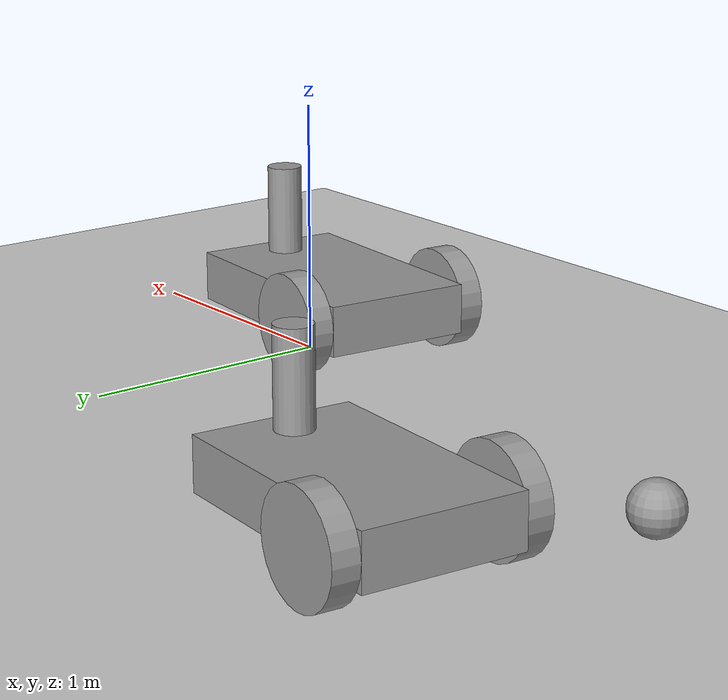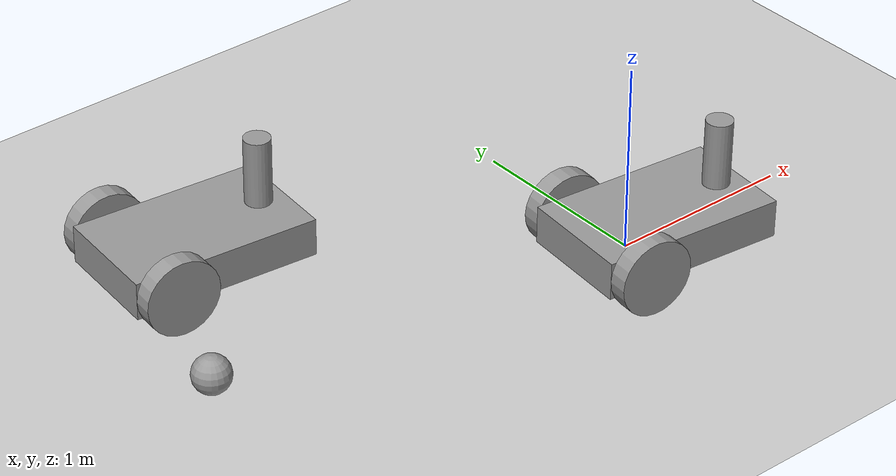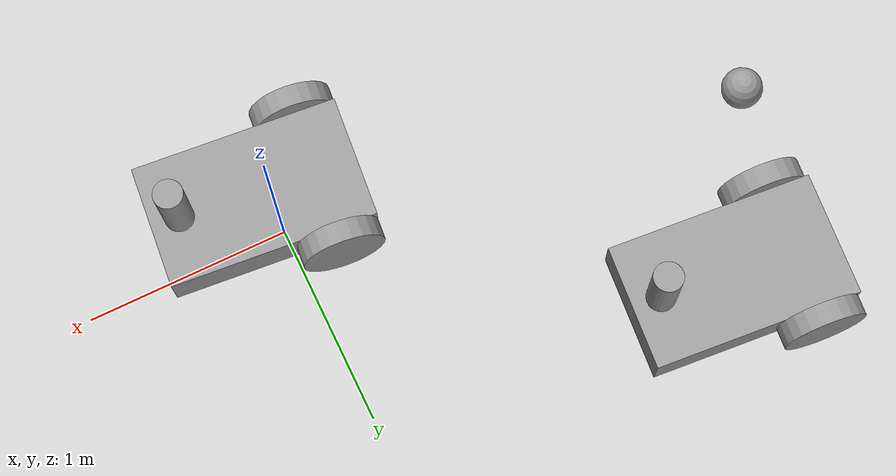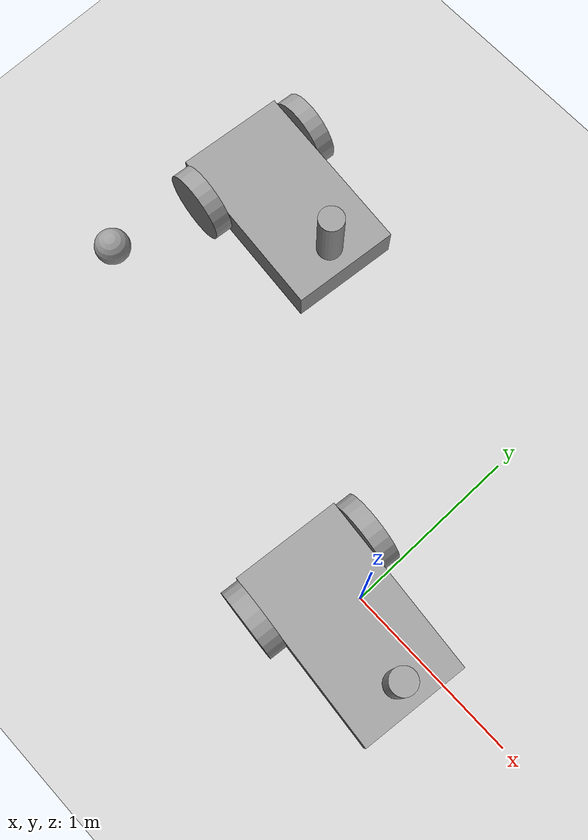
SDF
<sdf version="1.7">
 <world name="default">
  <model name="ground_plane">
   <static>1</static>
   <link name="link">
    <collision name="collision">
     <geometry><plane><normal>0 0 1</normal><size>100 100</size></plane></geometry>
     <surface>
      <contact><collide_bitmask>65535</collide_bitmask></contact>
      <friction><ode><mu>100</mu><mu2>50</mu2></ode></friction>
     </surface>
    </collision>
    <visual name="visual">
     <cast_shadows>0</cast_shadows>
     <geometry><plane><normal>0 0 1</normal><size>100 100</size></plane></geometry>
     <material>
      <script><uri>file://media/materials/scripts/gazebo.material</uri><name>Gazebo/Grey</name></script>
     </material>
    </visual>
   </link>
  </model>
  <model name="jason_bot_0">
   <link name="link_1">
    <inertial>
     <mass>0.111959</mass>
     <inertia>
      <ixx>0.00973396</ixx>
      <ixy>0</ixy>
      <ixz>0</ixz>
      <iyy>0.00310474</iyy>
      <iyz>0</iyz>
      <izz>0.0120306</izz>
     </inertia>
    </inertial>
    <pose>-0.224 -0.262981 0.465613 0 -0 0</pose>
    <visual name="visual">
     <geometry><box><size>1 0.6 0.2</size></box></geometry>
     <material>
      <lighting>1</lighting>
      <script><uri>file://media/materials/scripts/gazebo.material</uri><name>Gazebo/Grey</name></script>
      <shader type="pixel"><normal_map>__default__</normal_map></shader>
      <ambient>0.3 0.3 0.3 1</ambient>
      <diffuse>0.7 0.7 0.7 1</diffuse>
      <specular>0.01 0.01 0.01 1</specular>
      <emissive>0 0 0 1</emissive>
     </material>
    </visual>
    <collision name="collision">
     <geometry><box><size>1 0.6 0.2</size></box></geometry>
     <surface>
      <friction>
       <ode><mu>1</mu><mu2>1</mu2><fdir1>0 0 0</fdir1><slip1>0</slip1><slip2>0</slip2></ode>
       <torsional>
        <coefficient>1</coefficient>
        <patch_radius>0</patch_radius>
        <surface_radius>0</surface_radius>
        <use_patch_radius>1</use_patch_radius>
        <ode><slip>0</slip></ode>
       </torsional>
      </friction>
      <bounce><restitution_coefficient>0</restitution_coefficient><threshold>1e+06</threshold></bounce>
      <contact>
       <collide_without_contact>0</collide_without_contact>
       <collide_without_contact_bitmask>1</collide_without_contact_bitmask>
       <collide_bitmask>1</collide_bitmask>
       <ode>
        <soft_cfm>0</soft_cfm>
        <soft_erp>0.2</soft_erp>
        <kp>1e+13</kp>
        <kd>1</kd>
        <max_vel>0.01</max_vel>
        <min_depth>0</min_depth>
       </ode>
       <bullet>
        <split_impulse>1</split_impulse>
        <split_impulse_penetration_threshold>-0.01</split_impulse_penetration_threshold>
        <soft_cfm>0</soft_cfm>
        <soft_erp>0.2</soft_erp>
        <kp>1e+13</kp>
        <kd>1</kd>
       </bullet>
      </contact>
     </surface>
    </collision>
   </link>
   <link name="link_2">
    <inertial>
     <mass>1</mass>
     <inertia><ixx>0.145833</ixx><ixy>0</ixy><ixz>0</ixz><iyy>0.145833</iyy><iyz>0</iyz><izz>0.125</izz></inertia>
    </inertial>
    <pose>-0.524 -0.613 0.465613 1.5707 -0 0</pose>
    <visual name="visual">
     <geometry><cylinder><radius>0.2</radius><length>0.1</length></cylinder></geometry>
     <material>
      <lighting>1</lighting>
      <script><uri>file://media/materials/scripts/gazebo.material</uri><name>Gazebo/Grey</name></script>
      <shader type="pixel"><normal_map>__default__</normal_map></shader>
      <ambient>0.3 0.3 0.3 1</ambient>
      <diffuse>0.7 0.7 0.7 1</diffuse>
      <specular>0.01 0.01 0.01 1</specular>
      <emissive>0 0 0 1</emissive>
     </material>
    </visual>
    <collision name="collision">
     <geometry><cylinder><radius>0.2</radius><length>0.1</length></cylinder></geometry>
     <surface>
      <friction>
       <ode><mu>1</mu><mu2>1</mu2><fdir1>0 0 0</fdir1><slip1>0</slip1><slip2>0</slip2></ode>
       <torsional>
        <coefficient>1</coefficient>
        <patch_radius>0</patch_radius>
        <surface_radius>0</surface_radius>
        <use_patch_radius>1</use_patch_radius>
        <ode><slip>0</slip></ode>
       </torsional>
      </friction>
      <bounce><restitution_coefficient>0</restitution_coefficient><threshold>1e+06</threshold></bounce>
      <contact>
       <collide_without_contact>0</collide_without_contact>
       <collide_without_contact_bitmask>1</collide_without_contact_bitmask>
       <collide_bitmask>1</collide_bitmask>
       <ode>
        <soft_cfm>0</soft_cfm>
        <soft_erp>0.2</soft_erp>
        <kp>1e+13</kp>
        <kd>1</kd>
        <max_vel>0.01</max_vel>
        <min_depth>0</min_depth>
       </ode>
       <bullet>
        <split_impulse>1</split_impulse>
        <split_impulse_penetration_threshold>-0.01</split_impulse_penetration_threshold>
        <soft_cfm>0</soft_cfm>
        <soft_erp>0.2</soft_erp>
        <kp>1e+13</kp>
        <kd>1</kd>
       </bullet>
      </contact>
     </surface>
    </collision>
   </link>
   <link name="link_2_clone">
    <inertial>
     <mass>1</mass>
     <inertia><ixx>0.145833</ixx><ixy>0</ixy><ixz>0</ixz><iyy>0.145833</iyy><iyz>0</iyz><izz>0.125</izz></inertia>
    </inertial>
    <pose>-0.524 0.087038 0.465613 1.5707 -0 0</pose>
    <visual name="visual">
     <geometry><cylinder><radius>0.2</radius><length>0.1</length></cylinder></geometry>
     <material>
      <lighting>1</lighting>
      <script><uri>file://media/materials/scripts/gazebo.material</uri><name>Gazebo/Grey</name></script>
      <shader type="pixel"><normal_map>__default__</normal_map></shader>
      <ambient>0.3 0.3 0.3 1</ambient>
      <diffuse>0.7 0.7 0.7 1</diffuse>
      <specular>0.01 0.01 0.01 1</specular>
      <emissive>0 0 0 1</emissive>
     </material>
    </visual>
    <collision name="collision">
     <geometry><cylinder><radius>0.2</radius><length>0.1</length></cylinder></geometry>
     <surface>
      <friction>
       <ode><mu>1</mu><mu2>1</mu2><fdir1>0 0 0</fdir1><slip1>0</slip1><slip2>0</slip2></ode>
       <torsional>
        <coefficient>1</coefficient>
        <patch_radius>0</patch_radius>
        <surface_radius>0</surface_radius>
        <use_patch_radius>1</use_patch_radius>
        <ode><slip>0</slip></ode>
       </torsional>
      </friction>
      <bounce><restitution_coefficient>0</restitution_coefficient><threshold>1e+06</threshold></bounce>
      <contact>
       <collide_without_contact>0</collide_without_contact>
       <collide_without_contact_bitmask>1</collide_without_contact_bitmask>
       <collide_bitmask>1</collide_bitmask>
       <ode>
        <soft_cfm>0</soft_cfm>
        <soft_erp>0.2</soft_erp>
        <kp>1e+13</kp>
        <kd>1</kd>
        <max_vel>0.01</max_vel>
        <min_depth>0</min_depth>
       </ode>
       <bullet>
        <split_impulse>1</split_impulse>
        <split_impulse_penetration_threshold>-0.01</split_impulse_penetration_threshold>
        <soft_cfm>0</soft_cfm>
        <soft_erp>0.2</soft_erp>
        <kp>1e+13</kp>
        <kd>1</kd>
       </bullet>
      </contact>
     </surface>
    </collision>
   </link>
   <link name="link_3">
    <inertial>
     <mass>0.0096568</mass>
     <inertia>
      <ixx>4.37931e-05</ixx>
      <ixy>0</ixy>
      <ixz>0</ixz>
      <iyy>4.37931e-05</iyy>
      <iyz>0</iyz>
      <izz>4.37931e-05</izz>
     </inertia>
    </inertial>
    <pose>0.136 -0.279742 0.378612 0 -0 0</pose>
    <visual name="visual">
     <geometry><sphere><radius>0.106477</radius></sphere></geometry>
     <material>
      <lighting>1</lighting>
      <script><uri>file://media/materials/scripts/gazebo.material</uri><name>Gazebo/Grey</name></script>
      <shader type="pixel"/>
      <emissive>0 0 0 1</emissive>
     </material>
    </visual>
    <collision name="collision">
     <geometry><sphere><radius>0.106477</radius></sphere></geometry>
     <surface>
      <friction>
       <ode><mu>1</mu><mu2>1</mu2><fdir1>0 0 0</fdir1><slip1>0</slip1><slip2>0</slip2></ode>
       <torsional>
        <coefficient>1</coefficient>
        <patch_radius>0</patch_radius>
        <surface_radius>0</surface_radius>
        <use_patch_radius>1</use_patch_radius>
        <ode><slip>0</slip></ode>
       </torsional>
      </friction>
      <bounce><restitution_coefficient>0</restitution_coefficient><threshold>1e+06</threshold></bounce>
      <contact>
       <collide_without_contact>0</collide_without_contact>
       <collide_without_contact_bitmask>1</collide_without_contact_bitmask>
       <collide_bitmask>1</collide_bitmask>
       <ode>
        <soft_cfm>0</soft_cfm>
        <soft_erp>0.2</soft_erp>
        <kp>1e+13</kp>
        <kd>1</kd>
        <max_vel>0.01</max_vel>
        <min_depth>0</min_depth>
       </ode>
       <bullet>
        <split_impulse>1</split_impulse>
        <split_impulse_penetration_threshold>-0.01</split_impulse_penetration_threshold>
        <soft_cfm>0</soft_cfm>
        <soft_erp>0.2</soft_erp>
        <kp>1e+13</kp>
        <kd>1</kd>
       </bullet>
      </contact>
     </surface>
    </collision>
   </link>
   <link name="link_4">
    <inertial>
     <mass>0.00988067</mass>
     <inertia>
      <ixx>0.00018749</ixx>
      <ixy>0</ixy>
      <ixz>0</ixz>
      <iyy>0.00018749</iyy>
      <iyz>0</iyz>
      <izz>2.653e-05</izz>
     </inertia>
    </inertial>
    <pose>0.136 -0.264648 0.72455 0 -0 0</pose>
    <visual name="visual">
     <geometry><cylinder><radius>0.07</radius><length>0.4</length></cylinder></geometry>
     <material>
      <lighting>1</lighting>
      <script><uri>file://media/materials/scripts/gazebo.material</uri><name>Gazebo/Grey</name></script>
      <shader type="pixel"><normal_map>__default__</normal_map></shader>
      <emissive>0 0 0 1</emissive>
      <ambient>0.3 0.3 0.3 1</ambient>
      <diffuse>0.7 0.7 0.7 1</diffuse>
      <specular>0.01 0.01 0.01 1</specular>
     </material>
    </visual>
    <collision name="collision">
     <geometry><cylinder><radius>0.07</radius><length>0.4</length></cylinder></geometry>
     <surface>
      <friction>
       <ode><mu>1</mu><mu2>1</mu2><fdir1>0 0 0</fdir1><slip1>0</slip1><slip2>0</slip2></ode>
       <torsional>
        <coefficient>1</coefficient>
        <patch_radius>0</patch_radius>
        <surface_radius>0</surface_radius>
        <use_patch_radius>1</use_patch_radius>
        <ode><slip>0</slip></ode>
       </torsional>
      </friction>
      <bounce><restitution_coefficient>0</restitution_coefficient><threshold>1e+06</threshold></bounce>
      <contact>
       <collide_without_contact>0</collide_without_contact>
       <collide_without_contact_bitmask>1</collide_without_contact_bitmask>
       <collide_bitmask>1</collide_bitmask>
       <ode>
        <soft_cfm>0</soft_cfm>
        <soft_erp>0.2</soft_erp>
        <kp>1e+13</kp>
        <kd>1</kd>
        <max_vel>0.01</max_vel>
        <min_depth>0</min_depth>
       </ode>
       <bullet>
        <split_impulse>1</split_impulse>
        <split_impulse_penetration_threshold>-0.01</split_impulse_penetration_threshold>
        <soft_cfm>0</soft_cfm>
        <soft_erp>0.2</soft_erp>
        <kp>1e+13</kp>
        <kd>1</kd>
       </bullet>
      </contact>
     </surface>
    </collision>
   </link>
   <joint name="link_1_JOINT_2" type="revolute">
    <parent>link_1</parent>
    <child>link_2_clone</child>
    <axis>
     <xyz>-0 -0 -1</xyz>
     <limit>
      <lower>-1.79769e+308</lower>
      <upper>1.79769e+308</upper>
      <effort>-1</effort>
      <velocity>-1</velocity>
     </limit>
     <dynamics>
      <spring_reference>0</spring_reference>
      <spring_stiffness>0</spring_stiffness>
      <damping>0</damping>
     </dynamics>
    </axis>
    <physics>
     <ode><limit><cfm>0</cfm><erp>0.2</erp></limit><suspension><cfm>0</cfm><erp>0.2</erp></suspension></ode>
    </physics>
   </joint>
   <joint name="link_1_JOINT_4" type="revolute">
    <parent>link_1</parent>
    <child>link_2</child>
    <axis>
     <xyz>1 0 0</xyz>
     <limit>
      <lower>-1.79769e+308</lower>
      <upper>1.79769e+308</upper>
      <effort>-1</effort>
      <velocity>-1</velocity>
     </limit>
     <dynamics>
      <spring_reference>0</spring_reference>
      <spring_stiffness>0</spring_stiffness>
      <damping>0</damping>
     </dynamics>
    </axis>
    <physics>
     <ode><limit><cfm>0</cfm><erp>0.2</erp></limit><suspension><cfm>0</cfm><erp>0.2</erp></suspension></ode>
    </physics>
   </joint>
   <joint name="link_1_JOINT_5" type="ball">
    <parent>link_1</parent>
    <child>link_3</child>
    <physics>
     <ode><limit><cfm>0</cfm><erp>0.2</erp></limit><suspension><cfm>0</cfm><erp>0.2</erp></suspension></ode>
    </physics>
   </joint>
   <joint name="link_1_JOINT_6" type="revolute">
    <parent>link_1</parent>
    <child>link_4</child>
    <axis>
     <xyz>0 0 1</xyz>
     <limit>
      <lower>-1.79769e+308</lower>
      <upper>1.79769e+308</upper>
      <effort>-1</effort>
      <velocity>-1</velocity>
     </limit>
     <dynamics>
      <spring_reference>0</spring_reference>
      <spring_stiffness>0</spring_stiffness>
      <damping>0</damping>
     </dynamics>
    </axis>
    <physics>
     <ode><limit><cfm>0</cfm><erp>0.2</erp></limit><suspension><cfm>0</cfm><erp>0.2</erp></suspension></ode>
    </physics>
   </joint>
   <static>0</static>
   <pose>0.302647 0.09113 -0.270768 4e-06 0.00989 -0.093632</pose>
  </model>
  <model name="jason_bot_0_clone">
   <link name="link_1">
    <inertial>
     <mass>0.111959</mass>
     <inertia>
      <ixx>0.00973396</ixx>
      <ixy>0</ixy>
      <ixz>0</ixz>
      <iyy>0.00310474</iyy>
      <iyz>0</iyz>
      <izz>0.0120306</izz>
     </inertia>
    </inertial>
    <pose>-0.224 -0.262981 0.465613 0 -0 0</pose>
    <visual name="visual">
     <geometry><box><size>1 0.6 0.2</size></box></geometry>
     <material>
      <lighting>1</lighting>
      <script><uri>file://media/materials/scripts/gazebo.material</uri><name>Gazebo/Grey</name></script>
      <shader type="pixel"><normal_map>__default__</normal_map></shader>
      <ambient>0.3 0.3 0.3 1</ambient>
      <diffuse>0.7 0.7 0.7 1</diffuse>
      <specular>0.01 0.01 0.01 1</specular>
      <emissive>0 0 0 1</emissive>
     </material>
    </visual>
    <collision name="collision">
     <geometry><box><size>1 0.6 0.2</size></box></geometry>
     <surface>
      <friction>
       <ode><mu>1</mu><mu2>1</mu2><fdir1>0 0 0</fdir1><slip1>0</slip1><slip2>0</slip2></ode>
       <torsional>
        <coefficient>1</coefficient>
        <patch_radius>0</patch_radius>
        <surface_radius>0</surface_radius>
        <use_patch_radius>1</use_patch_radius>
        <ode><slip>0</slip></ode>
       </torsional>
      </friction>
      <bounce><restitution_coefficient>0</restitution_coefficient><threshold>1e+06</threshold></bounce>
      <contact>
       <collide_without_contact>0</collide_without_contact>
       <collide_without_contact_bitmask>1</collide_without_contact_bitmask>
       <collide_bitmask>1</collide_bitmask>
       <ode>
        <soft_cfm>0</soft_cfm>
        <soft_erp>0.2</soft_erp>
        <kp>1e+13</kp>
        <kd>1</kd>
        <max_vel>0.01</max_vel>
        <min_depth>0</min_depth>
       </ode>
       <bullet>
        <split_impulse>1</split_impulse>
        <split_impulse_penetration_threshold>-0.01</split_impulse_penetration_threshold>
        <soft_cfm>0</soft_cfm>
        <soft_erp>0.2</soft_erp>
        <kp>1e+13</kp>
        <kd>1</kd>
       </bullet>
      </contact>
     </surface>
    </collision>
   </link>
   <link name="link_2">
    <inertial>
     <mass>1</mass>
     <inertia><ixx>0.145833</ixx><ixy>0</ixy><ixz>0</ixz><iyy>0.145833</iyy><iyz>0</iyz><izz>0.125</izz></inertia>
    </inertial>
    <pose>-0.524 -0.613 0.465613 1.5707 -0 0</pose>
    <visual name="visual">
     <geometry><cylinder><radius>0.2</radius><length>0.1</length></cylinder></geometry>
     <material>
      <lighting>1</lighting>
      <script><uri>file://media/materials/scripts/gazebo.material</uri><name>Gazebo/Grey</name></script>
      <shader type="pixel"><normal_map>__default__</normal_map></shader>
      <ambient>0.3 0.3 0.3 1</ambient>
      <diffuse>0.7 0.7 0.7 1</diffuse>
      <specular>0.01 0.01 0.01 1</specular>
      <emissive>0 0 0 1</emissive>
     </material>
    </visual>
    <collision name="collision">
     <geometry><cylinder><radius>0.2</radius><length>0.1</length></cylinder></geometry>
     <surface>
      <friction>
       <ode><mu>1</mu><mu2>1</mu2><fdir1>0 0 0</fdir1><slip1>0</slip1><slip2>0</slip2></ode>
       <torsional>
        <coefficient>1</coefficient>
        <patch_radius>0</patch_radius>
        <surface_radius>0</surface_radius>
        <use_patch_radius>1</use_patch_radius>
        <ode><slip>0</slip></ode>
       </torsional>
      </friction>
      <bounce><restitution_coefficient>0</restitution_coefficient><threshold>1e+06</threshold></bounce>
      <contact>
       <collide_without_contact>0</collide_without_contact>
       <collide_without_contact_bitmask>1</collide_without_contact_bitmask>
       <collide_bitmask>1</collide_bitmask>
       <ode>
        <soft_cfm>0</soft_cfm>
        <soft_erp>0.2</soft_erp>
        <kp>1e+13</kp>
        <kd>1</kd>
        <max_vel>0.01</max_vel>
        <min_depth>0</min_depth>
       </ode>
       <bullet>
        <split_impulse>1</split_impulse>
        <split_impulse_penetration_threshold>-0.01</split_impulse_penetration_threshold>
        <soft_cfm>0</soft_cfm>
        <soft_erp>0.2</soft_erp>
        <kp>1e+13</kp>
        <kd>1</kd>
       </bullet>
      </contact>
     </surface>
    </collision>
   </link>
   <link name="link_2_clone">
    <inertial>
     <mass>1</mass>
     <inertia><ixx>0.145833</ixx><ixy>0</ixy><ixz>0</ixz><iyy>0.145833</iyy><iyz>0</iyz><izz>0.125</izz></inertia>
    </inertial>
    <pose>-0.524 0.087038 0.465613 1.5707 -0 0</pose>
    <visual name="visual">
     <geometry><cylinder><radius>0.2</radius><length>0.1</length></cylinder></geometry>
     <material>
      <lighting>1</lighting>
      <script><uri>file://media/materials/scripts/gazebo.material</uri><name>Gazebo/Grey</name></script>
      <shader type="pixel"><normal_map>__default__</normal_map></shader>
      <ambient>0.3 0.3 0.3 1</ambient>
      <diffuse>0.7 0.7 0.7 1</diffuse>
      <specular>0.01 0.01 0.01 1</specular>
      <emissive>0 0 0 1</emissive>
     </material>
    </visual>
    <collision name="collision">
     <geometry><cylinder><radius>0.2</radius><length>0.1</length></cylinder></geometry>
     <surface>
      <friction>
       <ode><mu>1</mu><mu2>1</mu2><fdir1>0 0 0</fdir1><slip1>0</slip1><slip2>0</slip2></ode>
       <torsional>
        <coefficient>1</coefficient>
        <patch_radius>0</patch_radius>
        <surface_radius>0</surface_radius>
        <use_patch_radius>1</use_patch_radius>
        <ode><slip>0</slip></ode>
       </torsional>
      </friction>
      <bounce><restitution_coefficient>0</restitution_coefficient><threshold>1e+06</threshold></bounce>
      <contact>
       <collide_without_contact>0</collide_without_contact>
       <collide_without_contact_bitmask>1</collide_without_contact_bitmask>
       <collide_bitmask>1</collide_bitmask>
       <ode>
        <soft_cfm>0</soft_cfm>
        <soft_erp>0.2</soft_erp>
        <kp>1e+13</kp>
        <kd>1</kd>
        <max_vel>0.01</max_vel>
        <min_depth>0</min_depth>
       </ode>
       <bullet>
        <split_impulse>1</split_impulse>
        <split_impulse_penetration_threshold>-0.01</split_impulse_penetration_threshold>
        <soft_cfm>0</soft_cfm>
        <soft_erp>0.2</soft_erp>
        <kp>1e+13</kp>
        <kd>1</kd>
       </bullet>
      </contact>
     </surface>
    </collision>
   </link>
   <link name="link_3">
    <inertial>
     <mass>0.0096568</mass>
     <inertia>
      <ixx>4.37931e-05</ixx>
      <ixy>0</ixy>
      <ixz>0</ixz>
      <iyy>4.37931e-05</iyy>
      <iyz>0</iyz>
      <izz>4.37931e-05</izz>
     </inertia>
    </inertial>
    <pose>0.136 -0.279742 0.378612 0 -0 0</pose>
    <visual name="visual">
     <geometry><sphere><radius>0.106477</radius></sphere></geometry>
     <material>
      <lighting>1</lighting>
      <script><uri>file://media/materials/scripts/gazebo.material</uri><name>Gazebo/Grey</name></script>
      <shader type="pixel"/>
      <emissive>0 0 0 1</emissive>
     </material>
    </visual>
    <collision name="collision">
     <geometry><sphere><radius>0.106477</radius></sphere></geometry>
     <surface>
      <friction>
       <ode><mu>1</mu><mu2>1</mu2><fdir1>0 0 0</fdir1><slip1>0</slip1><slip2>0</slip2></ode>
       <torsional>
        <coefficient>1</coefficient>
        <patch_radius>0</patch_radius>
        <surface_radius>0</surface_radius>
        <use_patch_radius>1</use_patch_radius>
        <ode><slip>0</slip></ode>
       </torsional>
      </friction>
      <bounce><restitution_coefficient>0</restitution_coefficient><threshold>1e+06</threshold></bounce>
      <contact>
       <collide_without_contact>0</collide_without_contact>
       <collide_without_contact_bitmask>1</collide_without_contact_bitmask>
       <collide_bitmask>1</collide_bitmask>
       <ode>
        <soft_cfm>0</soft_cfm>
        <soft_erp>0.2</soft_erp>
        <kp>1e+13</kp>
        <kd>1</kd>
        <max_vel>0.01</max_vel>
        <min_depth>0</min_depth>
       </ode>
       <bullet>
        <split_impulse>1</split_impulse>
        <split_impulse_penetration_threshold>-0.01</split_impulse_penetration_threshold>
        <soft_cfm>0</soft_cfm>
        <soft_erp>0.2</soft_erp>
        <kp>1e+13</kp>
        <kd>1</kd>
       </bullet>
      </contact>
     </surface>
    </collision>
   </link>
   <link name="link_4">
    <inertial>
     <mass>0.00988067</mass>
     <inertia>
      <ixx>0.00018749</ixx>
      <ixy>0</ixy>
      <ixz>0</ixz>
      <iyy>0.00018749</iyy>
      <iyz>0</iyz>
      <izz>2.653e-05</izz>
     </inertia>
    </inertial>
    <pose>0.136 -0.264648 0.72455 0 -0 0</pose>
    <visual name="visual">
     <geometry><cylinder><radius>0.07</radius><length>0.4</length></cylinder></geometry>
     <material>
      <lighting>1</lighting>
      <script><uri>file://media/materials/scripts/gazebo.material</uri><name>Gazebo/Grey</name></script>
      <shader type="pixel"><normal_map>__default__</normal_map></shader>
      <emissive>0 0 0 1</emissive>
      <ambient>0.3 0.3 0.3 1</ambient>
      <diffuse>0.7 0.7 0.7 1</diffuse>
      <specular>0.01 0.01 0.01 1</specular>
     </material>
    </visual>
    <collision name="collision">
     <geometry><cylinder><radius>0.07</radius><length>0.4</length></cylinder></geometry>
     <surface>
      <friction>
       <ode><mu>1</mu><mu2>1</mu2><fdir1>0 0 0</fdir1><slip1>0</slip1><slip2>0</slip2></ode>
       <torsional>
        <coefficient>1</coefficient>
        <patch_radius>0</patch_radius>
        <surface_radius>0</surface_radius>
        <use_patch_radius>1</use_patch_radius>
        <ode><slip>0</slip></ode>
       </torsional>
      </friction>
      <bounce><restitution_coefficient>0</restitution_coefficient><threshold>1e+06</threshold></bounce>
      <contact>
       <collide_without_contact>0</collide_without_contact>
       <collide_without_contact_bitmask>1</collide_without_contact_bitmask>
       <collide_bitmask>1</collide_bitmask>
       <ode>
        <soft_cfm>0</soft_cfm>
        <soft_erp>0.2</soft_erp>
        <kp>1e+13</kp>
        <kd>1</kd>
        <max_vel>0.01</max_vel>
        <min_depth>0</min_depth>
       </ode>
       <bullet>
        <split_impulse>1</split_impulse>
        <split_impulse_penetration_threshold>-0.01</split_impulse_penetration_threshold>
        <soft_cfm>0</soft_cfm>
        <soft_erp>0.2</soft_erp>
        <kp>1e+13</kp>
        <kd>1</kd>
       </bullet>
      </contact>
     </surface>
    </collision>
   </link>
   <joint name="link_1_JOINT_2" type="revolute">
    <parent>link_1</parent>
    <child>link_2_clone</child>
    <axis>
     <xyz>-0 -0 -1</xyz>
     <limit>
      <lower>-1.79769e+308</lower>
      <upper>1.79769e+308</upper>
      <effort>-1</effort>
      <velocity>-1</velocity>
     </limit>
     <dynamics>
      <spring_reference>0</spring_reference>
      <spring_stiffness>0</spring_stiffness>
      <damping>0</damping>
     </dynamics>
    </axis>
    <physics>
     <ode><limit><cfm>0</cfm><erp>0.2</erp></limit><suspension><cfm>0</cfm><erp>0.2</erp></suspension></ode>
    </physics>
   </joint>
   <joint name="link_1_JOINT_4" type="revolute">
    <parent>link_1</parent>
    <child>link_2</child>
    <axis>
     <xyz>1 0 0</xyz>
     <limit>
      <lower>-1.79769e+308</lower>
      <upper>1.79769e+308</upper>
      <effort>-1</effort>
      <velocity>-1</velocity>
     </limit>
     <dynamics>
      <spring_reference>0</spring_reference>
      <spring_stiffness>0</spring_stiffness>
      <damping>0</damping>
     </dynamics>
    </axis>
    <physics>
     <ode><limit><cfm>0</cfm><erp>0.2</erp></limit><suspension><cfm>0</cfm><erp>0.2</erp></suspension></ode>
    </physics>
   </joint>
   <joint name="link_1_JOINT_5" type="ball">
    <parent>link_1</parent>
    <child>link_3</child>
    <physics>
     <ode><limit><cfm>0</cfm><erp>0.2</erp></limit><suspension><cfm>0</cfm><erp>0.2</erp></suspension></ode>
    </physics>
   </joint>
   <joint name="link_1_JOINT_6" type="revolute">
    <parent>link_1</parent>
    <child>link_4</child>
    <axis>
     <xyz>0 0 1</xyz>
     <limit>
      <lower>-1.79769e+308</lower>
      <upper>1.79769e+308</upper>
      <effort>-1</effort>
      <velocity>-1</velocity>
     </limit>
     <dynamics>
      <spring_reference>0</spring_reference>
      <spring_stiffness>0</spring_stiffness>
      <damping>0</damping>
     </dynamics>
    </axis>
    <physics>
     <ode><limit><cfm>0</cfm><erp>0.2</erp></limit><suspension><cfm>0</cfm><erp>0.2</erp></suspension></ode>
    </physics>
   </joint>
   <static>0</static>
   <pose>-1.52494 1.39082 -0.270768 4e-06 0.00989 -0.087632</pose>
  </model>
  <model name="my_ball">
   <link name="link_0">
    <inertial>
     <mass>1</mass>
     <inertia><ixx>0.1</ixx><ixy>0</ixy><ixz>0</ixz><iyy>0.1</iyy><iyz>0</iyz><izz>0.1</izz></inertia>
    </inertial>
    <visual name="visual">
     <geometry><sphere><radius>0.1</radius></sphere></geometry>
     <material>
      <lighting>1</lighting>
      <script><uri>file://media/materials/scripts/gazebo.material</uri><name>Gazebo/Grey</name></script>
      <shader type="pixel"><normal_map>__default__</normal_map></shader>
      <ambient>1 1 1 1</ambient>
      <diffuse>1 1 1 1</diffuse>
      <specular>1 1 1 1</specular>
      <emissive>1 1 1 1</emissive>
     </material>
    </visual>
    <collision name="collision">
     <geometry><sphere><radius>0.1</radius></sphere></geometry>
     <surface>
      <friction>
       <ode><mu>1</mu><mu2>1</mu2><fdir1>0 0 0</fdir1><slip1>0</slip1><slip2>0</slip2></ode>
       <torsional>
        <coefficient>1</coefficient>
        <patch_radius>0</patch_radius>
        <surface_radius>0</surface_radius>
        <use_patch_radius>1</use_patch_radius>
        <ode><slip>0</slip></ode>
       </torsional>
      </friction>
      <bounce><restitution_coefficient>0</restitution_coefficient><threshold>1e+06</threshold></bounce>
      <contact>
       <collide_without_contact>0</collide_without_contact>
       <collide_without_contact_bitmask>1</collide_without_contact_bitmask>
       <collide_bitmask>1</collide_bitmask>
       <ode>
        <soft_cfm>0</soft_cfm>
        <soft_erp>0.2</soft_erp>
        <kp>1e+13</kp>
        <kd>1</kd>
        <max_vel>0.01</max_vel>
        <min_depth>0</min_depth>
       </ode>
       <bullet>
        <split_impulse>1</split_impulse>
        <split_impulse_penetration_threshold>-0.01</split_impulse_penetration_threshold>
        <soft_cfm>0</soft_cfm>
        <soft_erp>0.2</soft_erp>
        <kp>1e+13</kp>
        <kd>1</kd>
       </bullet>
      </contact>
     </surface>
    </collision>
   </link>
   <static>0</static>
   <pose>-2.27692 0.32734 0.1 0 -0 0</pose>
  </model>
 </world>
</sdf>
